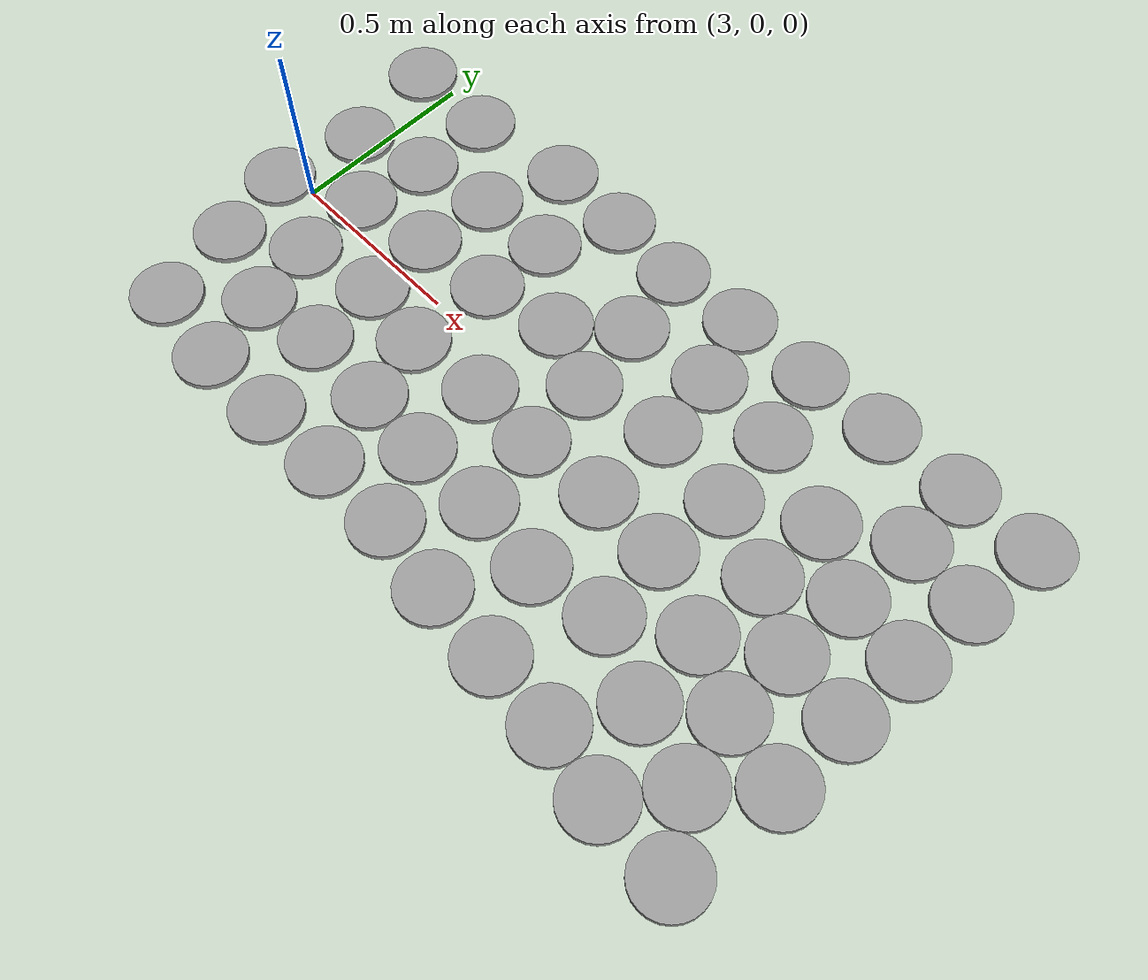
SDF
<sdf version="1.6">
 <world name="default">
  <model name="unit_cylinder_clone_clone_36">
   <pose>4.90435 -0.604437 0.008116 0 0 -0.001466</pose>
   <link name="link">
    <inertial>
     <mass>1</mass>
     <inertia><ixx>0.145833</ixx><ixy>0</ixy><ixz>0</ixz><iyy>0.145833</iyy><iyz>0</iyz><izz>0.125</izz></inertia>
    </inertial>
    <collision name="collision">
     <geometry><cylinder><radius>0.0950718</radius><length>0.0162339</length></cylinder></geometry>
    </collision>
    <visual name="visual">
     <geometry><cylinder><radius>0.0950718</radius><length>0.0162339</length></cylinder></geometry>
     <material>
      <script><name>Gazebo/Grey</name><uri>file://media/materials/scripts/gazebo.material</uri></script>
     </material>
    </visual>
   </link>
  </model>
  <model name="unit_cylinder_clone_clone_138">
   <pose>2.89325 0.483274 0.008108 0 -0 0</pose>
   <link name="link">
    <inertial>
     <mass>1</mass>
     <inertia><ixx>0.145833</ixx><ixy>0</ixy><ixz>0</ixz><iyy>0.145833</iyy><iyz>0</iyz><izz>0.125</izz></inertia>
    </inertial>
    <collision name="collision">
     <geometry><cylinder><radius>0.0950718</radius><length>0.0162339</length></cylinder></geometry>
    </collision>
    <visual name="visual">
     <geometry><cylinder><radius>0.0950718</radius><length>0.0162339</length></cylinder></geometry>
     <material>
      <script><name>Gazebo/Grey</name><uri>file://media/materials/scripts/gazebo.material</uri></script>
     </material>
    </visual>
   </link>
  </model>
  <model name="unit_cylinder_clone_clone_139">
   <pose>3.13849 0.47754 0.008111 0 -0 0</pose>
   <link name="link">
    <inertial>
     <mass>1</mass>
     <inertia><ixx>0.145833</ixx><ixy>0</ixy><ixz>0</ixz><iyy>0.145833</iyy><iyz>0</iyz><izz>0.125</izz></inertia>
    </inertial>
    <collision name="collision">
     <geometry><cylinder><radius>0.0950718</radius><length>0.0162339</length></cylinder></geometry>
    </collision>
    <visual name="visual">
     <geometry><cylinder><radius>0.0950718</radius><length>0.0162339</length></cylinder></geometry>
     <material>
      <script><name>Gazebo/Grey</name><uri>file://media/materials/scripts/gazebo.material</uri></script>
     </material>
    </visual>
   </link>
  </model>
  <model name="unit_cylinder_clone_clone_140">
   <pose>3.42416 0.515828 0.008111 0 -0 0</pose>
   <link name="link">
    <inertial>
     <mass>1</mass>
     <inertia><ixx>0.145833</ixx><ixy>0</ixy><ixz>0</ixz><iyy>0.145833</iyy><iyz>0</iyz><izz>0.125</izz></inertia>
    </inertial>
    <collision name="collision">
     <geometry><cylinder><radius>0.0950718</radius><length>0.0162339</length></cylinder></geometry>
    </collision>
    <visual name="visual">
     <geometry><cylinder><radius>0.0950718</radius><length>0.0162339</length></cylinder></geometry>
     <material>
      <script><name>Gazebo/Grey</name><uri>file://media/materials/scripts/gazebo.material</uri></script>
     </material>
    </visual>
   </link>
  </model>
  <model name="unit_cylinder_clone_clone_141">
   <pose>3.64434 0.508946 0.008111 0 -0 0</pose>
   <link name="link">
    <inertial>
     <mass>1</mass>
     <inertia><ixx>0.145833</ixx><ixy>0</ixy><ixz>0</ixz><iyy>0.145833</iyy><iyz>0</iyz><izz>0.125</izz></inertia>
    </inertial>
    <collision name="collision">
     <geometry><cylinder><radius>0.0950718</radius><length>0.0162339</length></cylinder></geometry>
    </collision>
    <visual name="visual">
     <geometry><cylinder><radius>0.0950718</radius><length>0.0162339</length></cylinder></geometry>
     <material>
      <script><name>Gazebo/Grey</name><uri>file://media/materials/scripts/gazebo.material</uri></script>
     </material>
    </visual>
   </link>
  </model>
  <model name="unit_cylinder_clone_clone_142">
   <pose>3.85659 0.493248 0.008111 0 -0 0</pose>
   <link name="link">
    <inertial>
     <mass>1</mass>
     <inertia><ixx>0.145833</ixx><ixy>0</ixy><ixz>0</ixz><iyy>0.145833</iyy><iyz>0</iyz><izz>0.125</izz></inertia>
    </inertial>
    <collision name="collision">
     <geometry><cylinder><radius>0.0950718</radius><length>0.0162339</length></cylinder></geometry>
    </collision>
    <visual name="visual">
     <geometry><cylinder><radius>0.0950718</radius><length>0.0162339</length></cylinder></geometry>
     <material>
      <script><name>Gazebo/Grey</name><uri>file://media/materials/scripts/gazebo.material</uri></script>
     </material>
    </visual>
   </link>
  </model>
  <model name="unit_cylinder_clone_clone_143">
   <pose>4.07459 0.507915 0.008117 0 0 -5e-06</pose>
   <link name="link">
    <inertial>
     <mass>1</mass>
     <inertia><ixx>0.145833</ixx><ixy>0</ixy><ixz>0</ixz><iyy>0.145833</iyy><iyz>0</iyz><izz>0.125</izz></inertia>
    </inertial>
    <collision name="collision">
     <geometry><cylinder><radius>0.0950718</radius><length>0.0162339</length></cylinder></geometry>
    </collision>
    <visual name="visual">
     <geometry><cylinder><radius>0.0950718</radius><length>0.0162339</length></cylinder></geometry>
     <material>
      <script><name>Gazebo/Grey</name><uri>file://media/materials/scripts/gazebo.material</uri></script>
     </material>
    </visual>
   </link>
  </model>
  <model name="unit_cylinder_clone_clone_144">
   <pose>4.30448 0.513574 0.008108 0 -0 0</pose>
   <link name="link">
    <inertial>
     <mass>1</mass>
     <inertia><ixx>0.145833</ixx><ixy>0</ixy><ixz>0</ixz><iyy>0.145833</iyy><iyz>0</iyz><izz>0.125</izz></inertia>
    </inertial>
    <collision name="collision">
     <geometry><cylinder><radius>0.0950718</radius><length>0.0162339</length></cylinder></geometry>
    </collision>
    <visual name="visual">
     <geometry><cylinder><radius>0.0950718</radius><length>0.0162339</length></cylinder></geometry>
     <material>
      <script><name>Gazebo/Grey</name><uri>file://media/materials/scripts/gazebo.material</uri></script>
     </material>
    </visual>
   </link>
  </model>
  <model name="unit_cylinder_clone_clone_145">
   <pose>4.52438 0.523553 0.008108 0 -0 0</pose>
   <link name="link">
    <inertial>
     <mass>1</mass>
     <inertia><ixx>0.145833</ixx><ixy>0</ixy><ixz>0</ixz><iyy>0.145833</iyy><iyz>0</iyz><izz>0.125</izz></inertia>
    </inertial>
    <collision name="collision">
     <geometry><cylinder><radius>0.0950718</radius><length>0.0162339</length></cylinder></geometry>
    </collision>
    <visual name="visual">
     <geometry><cylinder><radius>0.0950718</radius><length>0.0162339</length></cylinder></geometry>
     <material>
      <script><name>Gazebo/Grey</name><uri>file://media/materials/scripts/gazebo.material</uri></script>
     </material>
    </visual>
   </link>
  </model>
  <model name="unit_cylinder_clone_clone_146">
   <pose>4.76123 0.526268 0.008108 0 0 -0.000323</pose>
   <link name="link">
    <inertial>
     <mass>1</mass>
     <inertia><ixx>0.145833</ixx><ixy>0</ixy><ixz>0</ixz><iyy>0.145833</iyy><iyz>0</iyz><izz>0.125</izz></inertia>
    </inertial>
    <collision name="collision">
     <geometry><cylinder><radius>0.0950718</radius><length>0.0162339</length></cylinder></geometry>
    </collision>
    <visual name="visual">
     <geometry><cylinder><radius>0.0950718</radius><length>0.0162339</length></cylinder></geometry>
     <material>
      <script><name>Gazebo/Grey</name><uri>file://media/materials/scripts/gazebo.material</uri></script>
     </material>
    </visual>
   </link>
  </model>
  <model name="unit_cylinder_clone_clone_147">
   <pose>4.98221 0.527416 0.008108 0 -0 0</pose>
   <link name="link">
    <inertial>
     <mass>1</mass>
     <inertia><ixx>0.145833</ixx><ixy>0</ixy><ixz>0</ixz><iyy>0.145833</iyy><iyz>0</iyz><izz>0.125</izz></inertia>
    </inertial>
    <collision name="collision">
     <geometry><cylinder><radius>0.0950718</radius><length>0.0162339</length></cylinder></geometry>
    </collision>
    <visual name="visual">
     <geometry><cylinder><radius>0.0950718</radius><length>0.0162339</length></cylinder></geometry>
     <material>
      <script><name>Gazebo/Grey</name><uri>file://media/materials/scripts/gazebo.material</uri></script>
     </material>
    </visual>
   </link>
  </model>
  <model name="unit_cylinder_clone_clone_148">
   <pose>4.95923 0.314601 0.00811 0 -0 0.000135</pose>
   <link name="link">
    <inertial>
     <mass>1</mass>
     <inertia><ixx>0.145833</ixx><ixy>0</ixy><ixz>0</ixz><iyy>0.145833</iyy><iyz>0</iyz><izz>0.125</izz></inertia>
    </inertial>
    <collision name="collision">
     <geometry><cylinder><radius>0.0950718</radius><length>0.0162339</length></cylinder></geometry>
    </collision>
    <visual name="visual">
     <geometry><cylinder><radius>0.0950718</radius><length>0.0162339</length></cylinder></geometry>
     <material>
      <script><name>Gazebo/Grey</name><uri>file://media/materials/scripts/gazebo.material</uri></script>
     </material>
    </visual>
   </link>
  </model>
  <model name="unit_cylinder_clone_clone_149">
   <pose>4.94638 0.109705 0.008113 0 0 -1.2e-05</pose>
   <link name="link">
    <inertial>
     <mass>1</mass>
     <inertia><ixx>0.145833</ixx><ixy>0</ixy><ixz>0</ixz><iyy>0.145833</iyy><iyz>0</iyz><izz>0.125</izz></inertia>
    </inertial>
    <collision name="collision">
     <geometry><cylinder><radius>0.0950718</radius><length>0.0162339</length></cylinder></geometry>
    </collision>
    <visual name="visual">
     <geometry><cylinder><radius>0.0950718</radius><length>0.0162339</length></cylinder></geometry>
     <material>
      <script><name>Gazebo/Grey</name><uri>file://media/materials/scripts/gazebo.material</uri></script>
     </material>
    </visual>
   </link>
  </model>
  <model name="unit_cylinder_clone_clone_150">
   <pose>4.93795 -0.093221 0.008114 0 0 -0.000881</pose>
   <link name="link">
    <inertial>
     <mass>1</mass>
     <inertia><ixx>0.145833</ixx><ixy>0</ixy><ixz>0</ixz><iyy>0.145833</iyy><iyz>0</iyz><izz>0.125</izz></inertia>
    </inertial>
    <collision name="collision">
     <geometry><cylinder><radius>0.0950718</radius><length>0.0162339</length></cylinder></geometry>
    </collision>
    <visual name="visual">
     <geometry><cylinder><radius>0.0950718</radius><length>0.0162339</length></cylinder></geometry>
     <material>
      <script><name>Gazebo/Grey</name><uri>file://media/materials/scripts/gazebo.material</uri></script>
     </material>
    </visual>
   </link>
  </model>
  <model name="unit_cylinder_clone_clone_151">
   <pose>4.93708 -0.305269 0.008111 0 -0 0.000422</pose>
   <link name="link">
    <inertial>
     <mass>1</mass>
     <inertia><ixx>0.145833</ixx><ixy>0</ixy><ixz>0</ixz><iyy>0.145833</iyy><iyz>0</iyz><izz>0.125</izz></inertia>
    </inertial>
    <collision name="collision">
     <geometry><cylinder><radius>0.0950718</radius><length>0.0162339</length></cylinder></geometry>
    </collision>
    <visual name="visual">
     <geometry><cylinder><radius>0.0950718</radius><length>0.0162339</length></cylinder></geometry>
     <material>
      <script><name>Gazebo/Grey</name><uri>file://media/materials/scripts/gazebo.material</uri></script>
     </material>
    </visual>
   </link>
  </model>
  <model name="unit_cylinder_clone_clone_152">
   <pose>4.68583 -0.598279 0.008111 0 0 -0.001353</pose>
   <link name="link">
    <inertial>
     <mass>1</mass>
     <inertia><ixx>0.145833</ixx><ixy>0</ixy><ixz>0</ixz><iyy>0.145833</iyy><iyz>0</iyz><izz>0.125</izz></inertia>
    </inertial>
    <collision name="collision">
     <geometry><cylinder><radius>0.0950718</radius><length>0.0162339</length></cylinder></geometry>
    </collision>
    <visual name="visual">
     <geometry><cylinder><radius>0.0950718</radius><length>0.0162339</length></cylinder></geometry>
     <material>
      <script><name>Gazebo/Grey</name><uri>file://media/materials/scripts/gazebo.material</uri></script>
     </material>
    </visual>
   </link>
  </model>
  <model name="unit_cylinder_clone_clone_153">
   <pose>4.49802 -0.560228 0.008108 0 -0 0</pose>
   <link name="link">
    <inertial>
     <mass>1</mass>
     <inertia><ixx>0.145833</ixx><ixy>0</ixy><ixz>0</ixz><iyy>0.145833</iyy><iyz>0</iyz><izz>0.125</izz></inertia>
    </inertial>
    <collision name="collision">
     <geometry><cylinder><radius>0.0950718</radius><length>0.0162339</length></cylinder></geometry>
    </collision>
    <visual name="visual">
     <geometry><cylinder><radius>0.0950718</radius><length>0.0162339</length></cylinder></geometry>
     <material>
      <script><name>Gazebo/Grey</name><uri>file://media/materials/scripts/gazebo.material</uri></script>
     </material>
    </visual>
   </link>
  </model>
  <model name="unit_cylinder_clone_clone_154">
   <pose>4.29389 -0.543893 0.008111 0 -0 0</pose>
   <link name="link">
    <inertial>
     <mass>1</mass>
     <inertia><ixx>0.145833</ixx><ixy>0</ixy><ixz>0</ixz><iyy>0.145833</iyy><iyz>0</iyz><izz>0.125</izz></inertia>
    </inertial>
    <collision name="collision">
     <geometry><cylinder><radius>0.0950718</radius><length>0.0162339</length></cylinder></geometry>
    </collision>
    <visual name="visual">
     <geometry><cylinder><radius>0.0950718</radius><length>0.0162339</length></cylinder></geometry>
     <material>
      <script><name>Gazebo/Grey</name><uri>file://media/materials/scripts/gazebo.material</uri></script>
     </material>
    </visual>
   </link>
  </model>
  <model name="unit_cylinder_clone_clone_155">
   <pose>4.08148 -0.527942 0.008111 0 -0 0</pose>
   <link name="link">
    <inertial>
     <mass>1</mass>
     <inertia><ixx>0.145833</ixx><ixy>0</ixy><ixz>0</ixz><iyy>0.145833</iyy><iyz>0</iyz><izz>0.125</izz></inertia>
    </inertial>
    <collision name="collision">
     <geometry><cylinder><radius>0.0950718</radius><length>0.0162339</length></cylinder></geometry>
    </collision>
    <visual name="visual">
     <geometry><cylinder><radius>0.0950718</radius><length>0.0162339</length></cylinder></geometry>
     <material>
      <script><name>Gazebo/Grey</name><uri>file://media/materials/scripts/gazebo.material</uri></script>
     </material>
    </visual>
   </link>
  </model>
  <model name="unit_cylinder_clone_clone_156">
   <pose>3.8768 -0.494769 0.008108 0 -0 0</pose>
   <link name="link">
    <inertial>
     <mass>1</mass>
     <inertia><ixx>0.145833</ixx><ixy>0</ixy><ixz>0</ixz><iyy>0.145833</iyy><iyz>0</iyz><izz>0.125</izz></inertia>
    </inertial>
    <collision name="collision">
     <geometry><cylinder><radius>0.0950718</radius><length>0.0162339</length></cylinder></geometry>
    </collision>
    <visual name="visual">
     <geometry><cylinder><radius>0.0950718</radius><length>0.0162339</length></cylinder></geometry>
     <material>
      <script><name>Gazebo/Grey</name><uri>file://media/materials/scripts/gazebo.material</uri></script>
     </material>
    </visual>
   </link>
  </model>
  <model name="unit_cylinder_clone_clone_157">
   <pose>3.65687 -0.496051 0.008108 0 -0 0</pose>
   <link name="link">
    <inertial>
     <mass>1</mass>
     <inertia><ixx>0.145833</ixx><ixy>0</ixy><ixz>0</ixz><iyy>0.145833</iyy><iyz>0</iyz><izz>0.125</izz></inertia>
    </inertial>
    <collision name="collision">
     <geometry><cylinder><radius>0.0950718</radius><length>0.0162339</length></cylinder></geometry>
    </collision>
    <visual name="visual">
     <geometry><cylinder><radius>0.0950718</radius><length>0.0162339</length></cylinder></geometry>
     <material>
      <script><name>Gazebo/Grey</name><uri>file://media/materials/scripts/gazebo.material</uri></script>
     </material>
    </visual>
   </link>
  </model>
  <model name="unit_cylinder_clone_clone_158">
   <pose>3.4459 -0.505387 0.008111 0 -0 0</pose>
   <link name="link">
    <inertial>
     <mass>1</mass>
     <inertia><ixx>0.145833</ixx><ixy>0</ixy><ixz>0</ixz><iyy>0.145833</iyy><iyz>0</iyz><izz>0.125</izz></inertia>
    </inertial>
    <collision name="collision">
     <geometry><cylinder><radius>0.0950718</radius><length>0.0162339</length></cylinder></geometry>
    </collision>
    <visual name="visual">
     <geometry><cylinder><radius>0.0950718</radius><length>0.0162339</length></cylinder></geometry>
     <material>
      <script><name>Gazebo/Grey</name><uri>file://media/materials/scripts/gazebo.material</uri></script>
     </material>
    </visual>
   </link>
  </model>
  <model name="unit_cylinder_clone_clone_159">
   <pose>3.22615 -0.506667 0.008108 0 -0 0</pose>
   <link name="link">
    <inertial>
     <mass>1</mass>
     <inertia><ixx>0.145833</ixx><ixy>0</ixy><ixz>0</ixz><iyy>0.145833</iyy><iyz>0</iyz><izz>0.125</izz></inertia>
    </inertial>
    <collision name="collision">
     <geometry><cylinder><radius>0.0950718</radius><length>0.0162339</length></cylinder></geometry>
    </collision>
    <visual name="visual">
     <geometry><cylinder><radius>0.0950718</radius><length>0.0162339</length></cylinder></geometry>
     <material>
      <script><name>Gazebo/Grey</name><uri>file://media/materials/scripts/gazebo.material</uri></script>
     </material>
    </visual>
   </link>
  </model>
  <model name="unit_cylinder_clone_clone_160">
   <pose>3 -0.474655 0.008108 0 -0 0</pose>
   <link name="link">
    <inertial>
     <mass>1</mass>
     <inertia><ixx>0.145833</ixx><ixy>0</ixy><ixz>0</ixz><iyy>0.145833</iyy><iyz>0</iyz><izz>0.125</izz></inertia>
    </inertial>
    <collision name="collision">
     <geometry><cylinder><radius>0.0950718</radius><length>0.0162339</length></cylinder></geometry>
    </collision>
    <visual name="visual">
     <geometry><cylinder><radius>0.0950718</radius><length>0.0162339</length></cylinder></geometry>
     <material>
      <script><name>Gazebo/Grey</name><uri>file://media/materials/scripts/gazebo.material</uri></script>
     </material>
    </visual>
   </link>
  </model>
  <model name="unit_cylinder_clone_clone_205">
   <pose>2.95359 -0.239219 0.008116 0 -0 3e-06</pose>
   <link name="link">
    <inertial>
     <mass>1</mass>
     <inertia><ixx>0.145833</ixx><ixy>0</ixy><ixz>0</ixz><iyy>0.145833</iyy><iyz>0</iyz><izz>0.125</izz></inertia>
    </inertial>
    <collision name="collision">
     <geometry><cylinder><radius>0.0950718</radius><length>0.0162339</length></cylinder></geometry>
    </collision>
    <visual name="visual">
     <geometry><cylinder><radius>0.0950718</radius><length>0.0162339</length></cylinder></geometry>
     <material>
      <script><name>Gazebo/Grey</name><uri>file://media/materials/scripts/gazebo.material</uri></script>
     </material>
    </visual>
   </link>
  </model>
  <model name="unit_cylinder_clone_clone_206">
   <pose>2.90055 -0.030914 0.008108 0 -0 0</pose>
   <link name="link">
    <inertial>
     <mass>1</mass>
     <inertia><ixx>0.145833</ixx><ixy>0</ixy><ixz>0</ixz><iyy>0.145833</iyy><iyz>0</iyz><izz>0.125</izz></inertia>
    </inertial>
    <collision name="collision">
     <geometry><cylinder><radius>0.0950718</radius><length>0.0162339</length></cylinder></geometry>
    </collision>
    <visual name="visual">
     <geometry><cylinder><radius>0.0950718</radius><length>0.0162339</length></cylinder></geometry>
     <material>
      <script><name>Gazebo/Grey</name><uri>file://media/materials/scripts/gazebo.material</uri></script>
     </material>
    </visual>
   </link>
  </model>
  <model name="unit_cylinder_clone_clone_207">
   <pose>2.94007 0.215475 0.008116 0 -0 0</pose>
   <link name="link">
    <inertial>
     <mass>1</mass>
     <inertia><ixx>0.145833</ixx><ixy>0</ixy><ixz>0</ixz><iyy>0.145833</iyy><iyz>0</iyz><izz>0.125</izz></inertia>
    </inertial>
    <collision name="collision">
     <geometry><cylinder><radius>0.0950718</radius><length>0.0162339</length></cylinder></geometry>
    </collision>
    <visual name="visual">
     <geometry><cylinder><radius>0.0950718</radius><length>0.0162339</length></cylinder></geometry>
     <material>
      <script><name>Gazebo/Grey</name><uri>file://media/materials/scripts/gazebo.material</uri></script>
     </material>
    </visual>
   </link>
  </model>
  <model name="unit_cylinder_clone_clone_208">
   <pose>3.14051 0.266701 0.008108 0 -0 0</pose>
   <link name="link">
    <inertial>
     <mass>1</mass>
     <inertia><ixx>0.145833</ixx><ixy>0</ixy><ixz>0</ixz><iyy>0.145833</iyy><iyz>0</iyz><izz>0.125</izz></inertia>
    </inertial>
    <collision name="collision">
     <geometry><cylinder><radius>0.0950718</radius><length>0.0162339</length></cylinder></geometry>
    </collision>
    <visual name="visual">
     <geometry><cylinder><radius>0.0950718</radius><length>0.0162339</length></cylinder></geometry>
     <material>
      <script><name>Gazebo/Grey</name><uri>file://media/materials/scripts/gazebo.material</uri></script>
     </material>
    </visual>
   </link>
  </model>
  <model name="unit_cylinder_clone_clone_209">
   <pose>3.11553 0.071524 0.008108 0 -0 0</pose>
   <link name="link">
    <inertial>
     <mass>1</mass>
     <inertia><ixx>0.145833</ixx><ixy>0</ixy><ixz>0</ixz><iyy>0.145833</iyy><iyz>0</iyz><izz>0.125</izz></inertia>
    </inertial>
    <collision name="collision">
     <geometry><cylinder><radius>0.0950718</radius><length>0.0162339</length></cylinder></geometry>
    </collision>
    <visual name="visual">
     <geometry><cylinder><radius>0.0950718</radius><length>0.0162339</length></cylinder></geometry>
     <material>
      <script><name>Gazebo/Grey</name><uri>file://media/materials/scripts/gazebo.material</uri></script>
     </material>
    </visual>
   </link>
  </model>
  <model name="unit_cylinder_clone_clone_210">
   <pose>3.13292 -0.129381 0.008116 0 0 -2e-06</pose>
   <link name="link">
    <inertial>
     <mass>1</mass>
     <inertia><ixx>0.145833</ixx><ixy>0</ixy><ixz>0</ixz><iyy>0.145833</iyy><iyz>0</iyz><izz>0.125</izz></inertia>
    </inertial>
    <collision name="collision">
     <geometry><cylinder><radius>0.0950718</radius><length>0.0162339</length></cylinder></geometry>
    </collision>
    <visual name="visual">
     <geometry><cylinder><radius>0.0950718</radius><length>0.0162339</length></cylinder></geometry>
     <material>
      <script><name>Gazebo/Grey</name><uri>file://media/materials/scripts/gazebo.material</uri></script>
     </material>
    </visual>
   </link>
  </model>
  <model name="unit_cylinder_clone_clone_211">
   <pose>3.17541 -0.314717 0.008115 0 0 -1e-05</pose>
   <link name="link">
    <inertial>
     <mass>1</mass>
     <inertia><ixx>0.145833</ixx><ixy>0</ixy><ixz>0</ixz><iyy>0.145833</iyy><iyz>0</iyz><izz>0.125</izz></inertia>
    </inertial>
    <collision name="collision">
     <geometry><cylinder><radius>0.0950718</radius><length>0.0162339</length></cylinder></geometry>
    </collision>
    <visual name="visual">
     <geometry><cylinder><radius>0.0950718</radius><length>0.0162339</length></cylinder></geometry>
     <material>
      <script><name>Gazebo/Grey</name><uri>file://media/materials/scripts/gazebo.material</uri></script>
     </material>
    </visual>
   </link>
  </model>
  <model name="unit_cylinder_clone_clone_212">
   <pose>3.36841 -0.288432 0.008107 0 -0 0</pose>
   <link name="link">
    <inertial>
     <mass>1</mass>
     <inertia><ixx>0.145833</ixx><ixy>0</ixy><ixz>0</ixz><iyy>0.145833</iyy><iyz>0</iyz><izz>0.125</izz></inertia>
    </inertial>
    <collision name="collision">
     <geometry><cylinder><radius>0.0950718</radius><length>0.0162339</length></cylinder></geometry>
    </collision>
    <visual name="visual">
     <geometry><cylinder><radius>0.0950718</radius><length>0.0162339</length></cylinder></geometry>
     <material>
      <script><name>Gazebo/Grey</name><uri>file://media/materials/scripts/gazebo.material</uri></script>
     </material>
    </visual>
   </link>
  </model>
  <model name="unit_cylinder_clone_clone_213">
   <pose>3.35092 -0.08765 0.008108 0 -0 0</pose>
   <link name="link">
    <inertial>
     <mass>1</mass>
     <inertia><ixx>0.145833</ixx><ixy>0</ixy><ixz>0</ixz><iyy>0.145833</iyy><iyz>0</iyz><izz>0.125</izz></inertia>
    </inertial>
    <collision name="collision">
     <geometry><cylinder><radius>0.0950718</radius><length>0.0162339</length></cylinder></geometry>
    </collision>
    <visual name="visual">
     <geometry><cylinder><radius>0.0950718</radius><length>0.0162339</length></cylinder></geometry>
     <material>
      <script><name>Gazebo/Grey</name><uri>file://media/materials/scripts/gazebo.material</uri></script>
     </material>
    </visual>
   </link>
  </model>
  <model name="unit_cylinder_clone_clone_214">
   <pose>3.33373 0.105676 0.008107 0 -0 0</pose>
   <link name="link">
    <inertial>
     <mass>1</mass>
     <inertia><ixx>0.145833</ixx><ixy>0</ixy><ixz>0</ixz><iyy>0.145833</iyy><iyz>0</iyz><izz>0.125</izz></inertia>
    </inertial>
    <collision name="collision">
     <geometry><cylinder><radius>0.0950718</radius><length>0.0162339</length></cylinder></geometry>
    </collision>
    <visual name="visual">
     <geometry><cylinder><radius>0.0950718</radius><length>0.0162339</length></cylinder></geometry>
     <material>
      <script><name>Gazebo/Grey</name><uri>file://media/materials/scripts/gazebo.material</uri></script>
     </material>
    </visual>
   </link>
  </model>
  <model name="unit_cylinder_clone_clone_215">
   <pose>3.34991 0.308941 0.008111 0 -0 0</pose>
   <link name="link">
    <inertial>
     <mass>1</mass>
     <inertia><ixx>0.145833</ixx><ixy>0</ixy><ixz>0</ixz><iyy>0.145833</iyy><iyz>0</iyz><izz>0.125</izz></inertia>
    </inertial>
    <collision name="collision">
     <geometry><cylinder><radius>0.0950718</radius><length>0.0162339</length></cylinder></geometry>
    </collision>
    <visual name="visual">
     <geometry><cylinder><radius>0.0950718</radius><length>0.0162339</length></cylinder></geometry>
     <material>
      <script><name>Gazebo/Grey</name><uri>file://media/materials/scripts/gazebo.material</uri></script>
     </material>
    </visual>
   </link>
  </model>
  <model name="unit_cylinder_clone_clone_216">
   <pose>3.56087 0.318476 0.008111 0 -0 0</pose>
   <link name="link">
    <inertial>
     <mass>1</mass>
     <inertia><ixx>0.145833</ixx><ixy>0</ixy><ixz>0</ixz><iyy>0.145833</iyy><iyz>0</iyz><izz>0.125</izz></inertia>
    </inertial>
    <collision name="collision">
     <geometry><cylinder><radius>0.0950718</radius><length>0.0162339</length></cylinder></geometry>
    </collision>
    <visual name="visual">
     <geometry><cylinder><radius>0.0950718</radius><length>0.0162339</length></cylinder></geometry>
     <material>
      <script><name>Gazebo/Grey</name><uri>file://media/materials/scripts/gazebo.material</uri></script>
     </material>
    </visual>
   </link>
  </model>
  <model name="unit_cylinder_clone_clone_217">
   <pose>3.55278 0.12396 0.008111 0 -0 0</pose>
   <link name="link">
    <inertial>
     <mass>1</mass>
     <inertia><ixx>0.145833</ixx><ixy>0</ixy><ixz>0</ixz><iyy>0.145833</iyy><iyz>0</iyz><izz>0.125</izz></inertia>
    </inertial>
    <collision name="collision">
     <geometry><cylinder><radius>0.0950718</radius><length>0.0162339</length></cylinder></geometry>
    </collision>
    <visual name="visual">
     <geometry><cylinder><radius>0.0950718</radius><length>0.0162339</length></cylinder></geometry>
     <material>
      <script><name>Gazebo/Grey</name><uri>file://media/materials/scripts/gazebo.material</uri></script>
     </material>
    </visual>
   </link>
  </model>
  <model name="unit_cylinder_clone_clone_218">
   <pose>3.54395 -0.116753 0.008108 0 0 -2.4e-05</pose>
   <link name="link">
    <inertial>
     <mass>1</mass>
     <inertia><ixx>0.145833</ixx><ixy>0</ixy><ixz>0</ixz><iyy>0.145833</iyy><iyz>0</iyz><izz>0.125</izz></inertia>
    </inertial>
    <collision name="collision">
     <geometry><cylinder><radius>0.0950718</radius><length>0.0162339</length></cylinder></geometry>
    </collision>
    <visual name="visual">
     <geometry><cylinder><radius>0.0950718</radius><length>0.0162339</length></cylinder></geometry>
     <material>
      <script><name>Gazebo/Grey</name><uri>file://media/materials/scripts/gazebo.material</uri></script>
     </material>
    </visual>
   </link>
  </model>
  <model name="unit_cylinder_clone_clone_219">
   <pose>3.59163 -0.300822 0.008107 0 0 -2.5e-05</pose>
   <link name="link">
    <inertial>
     <mass>1</mass>
     <inertia><ixx>0.145833</ixx><ixy>0</ixy><ixz>0</ixz><iyy>0.145833</iyy><iyz>0</iyz><izz>0.125</izz></inertia>
    </inertial>
    <collision name="collision">
     <geometry><cylinder><radius>0.0950718</radius><length>0.0162339</length></cylinder></geometry>
    </collision>
    <visual name="visual">
     <geometry><cylinder><radius>0.0950718</radius><length>0.0162339</length></cylinder></geometry>
     <material>
      <script><name>Gazebo/Grey</name><uri>file://media/materials/scripts/gazebo.material</uri></script>
     </material>
    </visual>
   </link>
  </model>
  <model name="unit_cylinder_clone_clone_220">
   <pose>3.78397 -0.313128 0.008111 0 -0 0</pose>
   <link name="link">
    <inertial>
     <mass>1</mass>
     <inertia><ixx>0.145833</ixx><ixy>0</ixy><ixz>0</ixz><iyy>0.145833</iyy><iyz>0</iyz><izz>0.125</izz></inertia>
    </inertial>
    <collision name="collision">
     <geometry><cylinder><radius>0.0950718</radius><length>0.0162339</length></cylinder></geometry>
    </collision>
    <visual name="visual">
     <geometry><cylinder><radius>0.0950718</radius><length>0.0162339</length></cylinder></geometry>
     <material>
      <script><name>Gazebo/Grey</name><uri>file://media/materials/scripts/gazebo.material</uri></script>
     </material>
    </visual>
   </link>
  </model>
  <model name="unit_cylinder_clone_clone_221">
   <pose>3.76566 -0.09443 0.008111 0 -0 0</pose>
   <link name="link">
    <inertial>
     <mass>1</mass>
     <inertia><ixx>0.145833</ixx><ixy>0</ixy><ixz>0</ixz><iyy>0.145833</iyy><iyz>0</iyz><izz>0.125</izz></inertia>
    </inertial>
    <collision name="collision">
     <geometry><cylinder><radius>0.0950718</radius><length>0.0162339</length></cylinder></geometry>
    </collision>
    <visual name="visual">
     <geometry><cylinder><radius>0.0950718</radius><length>0.0162339</length></cylinder></geometry>
     <material>
      <script><name>Gazebo/Grey</name><uri>file://media/materials/scripts/gazebo.material</uri></script>
     </material>
    </visual>
   </link>
  </model>
  <model name="unit_cylinder_clone_clone_222">
   <pose>3.76052 0.167575 0.008111 0 0 -1e-06</pose>
   <link name="link">
    <inertial>
     <mass>1</mass>
     <inertia><ixx>0.145833</ixx><ixy>0</ixy><ixz>0</ixz><iyy>0.145833</iyy><iyz>0</iyz><izz>0.125</izz></inertia>
    </inertial>
    <collision name="collision">
     <geometry><cylinder><radius>0.0950718</radius><length>0.0162339</length></cylinder></geometry>
    </collision>
    <visual name="visual">
     <geometry><cylinder><radius>0.0950718</radius><length>0.0162339</length></cylinder></geometry>
     <material>
      <script><name>Gazebo/Grey</name><uri>file://media/materials/scripts/gazebo.material</uri></script>
     </material>
    </visual>
   </link>
  </model>
  <model name="unit_cylinder_clone_clone_223">
   <pose>3.9005 0.297308 0.008117 0 -0 1e-06</pose>
   <link name="link">
    <inertial>
     <mass>1</mass>
     <inertia><ixx>0.145833</ixx><ixy>0</ixy><ixz>0</ixz><iyy>0.145833</iyy><iyz>0</iyz><izz>0.125</izz></inertia>
    </inertial>
    <collision name="collision">
     <geometry><cylinder><radius>0.0950718</radius><length>0.0162339</length></cylinder></geometry>
    </collision>
    <visual name="visual">
     <geometry><cylinder><radius>0.0950718</radius><length>0.0162339</length></cylinder></geometry>
     <material>
      <script><name>Gazebo/Grey</name><uri>file://media/materials/scripts/gazebo.material</uri></script>
     </material>
    </visual>
   </link>
  </model>
  <model name="unit_cylinder_clone_clone_224">
   <pose>3.93641 0.095318 0.008109 0 -0 1.1e-05</pose>
   <link name="link">
    <inertial>
     <mass>1</mass>
     <inertia><ixx>0.145833</ixx><ixy>0</ixy><ixz>0</ixz><iyy>0.145833</iyy><iyz>0</iyz><izz>0.125</izz></inertia>
    </inertial>
    <collision name="collision">
     <geometry><cylinder><radius>0.0950718</radius><length>0.0162339</length></cylinder></geometry>
    </collision>
    <visual name="visual">
     <geometry><cylinder><radius>0.0950718</radius><length>0.0162339</length></cylinder></geometry>
     <material>
      <script><name>Gazebo/Grey</name><uri>file://media/materials/scripts/gazebo.material</uri></script>
     </material>
    </visual>
   </link>
  </model>
  <model name="unit_cylinder_clone_clone_225">
   <pose>3.9608 -0.105522 0.008111 0 -0 0</pose>
   <link name="link">
    <inertial>
     <mass>1</mass>
     <inertia><ixx>0.145833</ixx><ixy>0</ixy><ixz>0</ixz><iyy>0.145833</iyy><iyz>0</iyz><izz>0.125</izz></inertia>
    </inertial>
    <collision name="collision">
     <geometry><cylinder><radius>0.0950718</radius><length>0.0162339</length></cylinder></geometry>
    </collision>
    <visual name="visual">
     <geometry><cylinder><radius>0.0950718</radius><length>0.0162339</length></cylinder></geometry>
     <material>
      <script><name>Gazebo/Grey</name><uri>file://media/materials/scripts/gazebo.material</uri></script>
     </material>
    </visual>
   </link>
  </model>
  <model name="unit_cylinder_clone_clone_226">
   <pose>3.99526 -0.306657 0.008111 0 -0 0</pose>
   <link name="link">
    <inertial>
     <mass>1</mass>
     <inertia><ixx>0.145833</ixx><ixy>0</ixy><ixz>0</ixz><iyy>0.145833</iyy><iyz>0</iyz><izz>0.125</izz></inertia>
    </inertial>
    <collision name="collision">
     <geometry><cylinder><radius>0.0950718</radius><length>0.0162339</length></cylinder></geometry>
    </collision>
    <visual name="visual">
     <geometry><cylinder><radius>0.0950718</radius><length>0.0162339</length></cylinder></geometry>
     <material>
      <script><name>Gazebo/Grey</name><uri>file://media/materials/scripts/gazebo.material</uri></script>
     </material>
    </visual>
   </link>
  </model>
  <model name="unit_cylinder_clone_clone_227">
   <pose>4.19963 -0.331371 0.008111 0 -0 0</pose>
   <link name="link">
    <inertial>
     <mass>1</mass>
     <inertia><ixx>0.145833</ixx><ixy>0</ixy><ixz>0</ixz><iyy>0.145833</iyy><iyz>0</iyz><izz>0.125</izz></inertia>
    </inertial>
    <collision name="collision">
     <geometry><cylinder><radius>0.0950718</radius><length>0.0162339</length></cylinder></geometry>
    </collision>
    <visual name="visual">
     <geometry><cylinder><radius>0.0950718</radius><length>0.0162339</length></cylinder></geometry>
     <material>
      <script><name>Gazebo/Grey</name><uri>file://media/materials/scripts/gazebo.material</uri></script>
     </material>
    </visual>
   </link>
  </model>
  <model name="unit_cylinder_clone_clone_228">
   <pose>4.1717 -0.087659 0.008111 0 -0 0</pose>
   <link name="link">
    <inertial>
     <mass>1</mass>
     <inertia><ixx>0.145833</ixx><ixy>0</ixy><ixz>0</ixz><iyy>0.145833</iyy><iyz>0</iyz><izz>0.125</izz></inertia>
    </inertial>
    <collision name="collision">
     <geometry><cylinder><radius>0.0950718</radius><length>0.0162339</length></cylinder></geometry>
    </collision>
    <visual name="visual">
     <geometry><cylinder><radius>0.0950718</radius><length>0.0162339</length></cylinder></geometry>
     <material>
      <script><name>Gazebo/Grey</name><uri>file://media/materials/scripts/gazebo.material</uri></script>
     </material>
    </visual>
   </link>
  </model>
  <model name="unit_cylinder_clone_clone_229">
   <pose>4.16143 0.139814 0.008116 0 0 -6e-06</pose>
   <link name="link">
    <inertial>
     <mass>1</mass>
     <inertia><ixx>0.145833</ixx><ixy>0</ixy><ixz>0</ixz><iyy>0.145833</iyy><iyz>0</iyz><izz>0.125</izz></inertia>
    </inertial>
    <collision name="collision">
     <geometry><cylinder><radius>0.0950718</radius><length>0.0162339</length></cylinder></geometry>
    </collision>
    <visual name="visual">
     <geometry><cylinder><radius>0.0950718</radius><length>0.0162339</length></cylinder></geometry>
     <material>
      <script><name>Gazebo/Grey</name><uri>file://media/materials/scripts/gazebo.material</uri></script>
     </material>
    </visual>
   </link>
  </model>
  <model name="unit_cylinder_clone_clone_230">
   <pose>4.1374 0.328443 0.008117 0 0 -9e-06</pose>
   <link name="link">
    <inertial>
     <mass>1</mass>
     <inertia><ixx>0.145833</ixx><ixy>0</ixy><ixz>0</ixz><iyy>0.145833</iyy><iyz>0</iyz><izz>0.125</izz></inertia>
    </inertial>
    <collision name="collision">
     <geometry><cylinder><radius>0.0950718</radius><length>0.0162339</length></cylinder></geometry>
    </collision>
    <visual name="visual">
     <geometry><cylinder><radius>0.0950718</radius><length>0.0162339</length></cylinder></geometry>
     <material>
      <script><name>Gazebo/Grey</name><uri>file://media/materials/scripts/gazebo.material</uri></script>
     </material>
    </visual>
   </link>
  </model>
  <model name="unit_cylinder_clone_clone_231">
   <pose>4.35671 0.317699 0.008111 0 -0 0</pose>
   <link name="link">
    <inertial>
     <mass>1</mass>
     <inertia><ixx>0.145833</ixx><ixy>0</ixy><ixz>0</ixz><iyy>0.145833</iyy><iyz>0</iyz><izz>0.125</izz></inertia>
    </inertial>
    <collision name="collision">
     <geometry><cylinder><radius>0.0950718</radius><length>0.0162339</length></cylinder></geometry>
    </collision>
    <visual name="visual">
     <geometry><cylinder><radius>0.0950718</radius><length>0.0162339</length></cylinder></geometry>
     <material>
      <script><name>Gazebo/Grey</name><uri>file://media/materials/scripts/gazebo.material</uri></script>
     </material>
    </visual>
   </link>
  </model>
  <model name="unit_cylinder_clone_clone_232">
   <pose>4.39161 0.108042 0.008107 0 -0 0</pose>
   <link name="link">
    <inertial>
     <mass>1</mass>
     <inertia><ixx>0.145833</ixx><ixy>0</ixy><ixz>0</ixz><iyy>0.145833</iyy><iyz>0</iyz><izz>0.125</izz></inertia>
    </inertial>
    <collision name="collision">
     <geometry><cylinder><radius>0.0950718</radius><length>0.0162339</length></cylinder></geometry>
    </collision>
    <visual name="visual">
     <geometry><cylinder><radius>0.0950718</radius><length>0.0162339</length></cylinder></geometry>
     <material>
      <script><name>Gazebo/Grey</name><uri>file://media/materials/scripts/gazebo.material</uri></script>
     </material>
    </visual>
   </link>
  </model>
  <model name="unit_cylinder_clone_clone_233">
   <pose>4.37537 -0.095462 0.008111 0 -0 0</pose>
   <link name="link">
    <inertial>
     <mass>1</mass>
     <inertia><ixx>0.145833</ixx><ixy>0</ixy><ixz>0</ixz><iyy>0.145833</iyy><iyz>0</iyz><izz>0.125</izz></inertia>
    </inertial>
    <collision name="collision">
     <geometry><cylinder><radius>0.0950718</radius><length>0.0162339</length></cylinder></geometry>
    </collision>
    <visual name="visual">
     <geometry><cylinder><radius>0.0950718</radius><length>0.0162339</length></cylinder></geometry>
     <material>
      <script><name>Gazebo/Grey</name><uri>file://media/materials/scripts/gazebo.material</uri></script>
     </material>
    </visual>
   </link>
  </model>
  <model name="unit_cylinder_clone_clone_234">
   <pose>4.40143 -0.297077 0.008108 0 -0 0</pose>
   <link name="link">
    <inertial>
     <mass>1</mass>
     <inertia><ixx>0.145833</ixx><ixy>0</ixy><ixz>0</ixz><iyy>0.145833</iyy><iyz>0</iyz><izz>0.125</izz></inertia>
    </inertial>
    <collision name="collision">
     <geometry><cylinder><radius>0.0950718</radius><length>0.0162339</length></cylinder></geometry>
    </collision>
    <visual name="visual">
     <geometry><cylinder><radius>0.0950718</radius><length>0.0162339</length></cylinder></geometry>
     <material>
      <script><name>Gazebo/Grey</name><uri>file://media/materials/scripts/gazebo.material</uri></script>
     </material>
    </visual>
   </link>
  </model>
  <model name="unit_cylinder_clone_clone_235">
   <pose>4.59977 -0.384538 0.008109 0 0 -0.001732</pose>
   <link name="link">
    <inertial>
     <mass>1</mass>
     <inertia><ixx>0.145833</ixx><ixy>0</ixy><ixz>0</ixz><iyy>0.145833</iyy><iyz>0</iyz><izz>0.125</izz></inertia>
    </inertial>
    <collision name="collision">
     <geometry><cylinder><radius>0.0950718</radius><length>0.0162339</length></cylinder></geometry>
    </collision>
    <visual name="visual">
     <geometry><cylinder><radius>0.0950718</radius><length>0.0162339</length></cylinder></geometry>
     <material>
      <script><name>Gazebo/Grey</name><uri>file://media/materials/scripts/gazebo.material</uri></script>
     </material>
    </visual>
   </link>
  </model>
  <model name="unit_cylinder_clone_clone_236">
   <pose>4.57984 -0.180494 0.00811 0 -0 0.004546</pose>
   <link name="link">
    <inertial>
     <mass>1</mass>
     <inertia><ixx>0.145833</ixx><ixy>0</ixy><ixz>0</ixz><iyy>0.145833</iyy><iyz>0</iyz><izz>0.125</izz></inertia>
    </inertial>
    <collision name="collision">
     <geometry><cylinder><radius>0.0950718</radius><length>0.0162339</length></cylinder></geometry>
    </collision>
    <visual name="visual">
     <geometry><cylinder><radius>0.0950718</radius><length>0.0162339</length></cylinder></geometry>
     <material>
      <script><name>Gazebo/Grey</name><uri>file://media/materials/scripts/gazebo.material</uri></script>
     </material>
    </visual>
   </link>
  </model>
  <model name="unit_cylinder_clone_clone_237">
   <pose>4.58644 0.027195 0.008117 0 -0 0.00052</pose>
   <link name="link">
    <inertial>
     <mass>1</mass>
     <inertia><ixx>0.145833</ixx><ixy>0</ixy><ixz>0</ixz><iyy>0.145833</iyy><iyz>0</iyz><izz>0.125</izz></inertia>
    </inertial>
    <collision name="collision">
     <geometry><cylinder><radius>0.0950718</radius><length>0.0162339</length></cylinder></geometry>
    </collision>
    <visual name="visual">
     <geometry><cylinder><radius>0.0950718</radius><length>0.0162339</length></cylinder></geometry>
     <material>
      <script><name>Gazebo/Grey</name><uri>file://media/materials/scripts/gazebo.material</uri></script>
     </material>
    </visual>
   </link>
  </model>
  <model name="unit_cylinder_clone_clone_238">
   <pose>4.58964 0.226791 0.008107 0 -0 0</pose>
   <link name="link">
    <inertial>
     <mass>1</mass>
     <inertia><ixx>0.145833</ixx><ixy>0</ixy><ixz>0</ixz><iyy>0.145833</iyy><iyz>0</iyz><izz>0.125</izz></inertia>
    </inertial>
    <collision name="collision">
     <geometry><cylinder><radius>0.0950718</radius><length>0.0162339</length></cylinder></geometry>
    </collision>
    <visual name="visual">
     <geometry><cylinder><radius>0.0950718</radius><length>0.0162339</length></cylinder></geometry>
     <material>
      <script><name>Gazebo/Grey</name><uri>file://media/materials/scripts/gazebo.material</uri></script>
     </material>
    </visual>
   </link>
  </model>
  <model name="unit_cylinder_clone_clone_239">
   <pose>4.77033 0.33634 0.008107 0 0 -0.000188</pose>
   <link name="link">
    <inertial>
     <mass>1</mass>
     <inertia><ixx>0.145833</ixx><ixy>0</ixy><ixz>0</ixz><iyy>0.145833</iyy><iyz>0</iyz><izz>0.125</izz></inertia>
    </inertial>
    <collision name="collision">
     <geometry><cylinder><radius>0.0950718</radius><length>0.0162339</length></cylinder></geometry>
    </collision>
    <visual name="visual">
     <geometry><cylinder><radius>0.0950718</radius><length>0.0162339</length></cylinder></geometry>
     <material>
      <script><name>Gazebo/Grey</name><uri>file://media/materials/scripts/gazebo.material</uri></script>
     </material>
    </visual>
   </link>
  </model>
  <model name="unit_cylinder_clone_clone_240">
   <pose>4.75703 0.127191 0.008111 0 0 -2.5e-05</pose>
   <link name="link">
    <inertial>
     <mass>1</mass>
     <inertia><ixx>0.145833</ixx><ixy>0</ixy><ixz>0</ixz><iyy>0.145833</iyy><iyz>0</iyz><izz>0.125</izz></inertia>
    </inertial>
    <collision name="collision">
     <geometry><cylinder><radius>0.0950718</radius><length>0.0162339</length></cylinder></geometry>
    </collision>
    <visual name="visual">
     <geometry><cylinder><radius>0.0950718</radius><length>0.0162339</length></cylinder></geometry>
     <material>
      <script><name>Gazebo/Grey</name><uri>file://media/materials/scripts/gazebo.material</uri></script>
     </material>
    </visual>
   </link>
  </model>
  <model name="unit_cylinder_clone_clone_241">
   <pose>4.74892 -0.071591 0.008111 0 -0 0.002882</pose>
   <link name="link">
    <inertial>
     <mass>1</mass>
     <inertia><ixx>0.145833</ixx><ixy>0</ixy><ixz>0</ixz><iyy>0.145833</iyy><iyz>0</iyz><izz>0.125</izz></inertia>
    </inertial>
    <collision name="collision">
     <geometry><cylinder><radius>0.0950718</radius><length>0.0162339</length></cylinder></geometry>
    </collision>
    <visual name="visual">
     <geometry><cylinder><radius>0.0950718</radius><length>0.0162339</length></cylinder></geometry>
     <material>
      <script><name>Gazebo/Grey</name><uri>file://media/materials/scripts/gazebo.material</uri></script>
     </material>
    </visual>
   </link>
  </model>
  <model name="unit_cylinder_clone_clone_242">
   <pose>4.75181 -0.261721 0.008107 0 -0 0.001102</pose>
   <link name="link">
    <inertial>
     <mass>1</mass>
     <inertia><ixx>0.145833</ixx><ixy>0</ixy><ixz>0</ixz><iyy>0.145833</iyy><iyz>0</iyz><izz>0.125</izz></inertia>
    </inertial>
    <collision name="collision">
     <geometry><cylinder><radius>0.0950718</radius><length>0.0162339</length></cylinder></geometry>
    </collision>
    <visual name="visual">
     <geometry><cylinder><radius>0.0950718</radius><length>0.0162339</length></cylinder></geometry>
     <material>
      <script><name>Gazebo/Grey</name><uri>file://media/materials/scripts/gazebo.material</uri></script>
     </material>
    </visual>
   </link>
  </model>
  <model name="unit_cylinder_clone_clone_243">
   <pose>4.79955 -0.445774 0.008117 0 0 -0.000248</pose>
   <link name="link">
    <inertial>
     <mass>1</mass>
     <inertia><ixx>0.145833</ixx><ixy>0</ixy><ixz>0</ixz><iyy>0.145833</iyy><iyz>0</iyz><izz>0.125</izz></inertia>
    </inertial>
    <collision name="collision">
     <geometry><cylinder><radius>0.0950718</radius><length>0.0162339</length></cylinder></geometry>
    </collision>
    <visual name="visual">
     <geometry><cylinder><radius>0.0950718</radius><length>0.0162339</length></cylinder></geometry>
     <material>
      <script><name>Gazebo/Grey</name><uri>file://media/materials/scripts/gazebo.material</uri></script>
     </material>
    </visual>
   </link>
  </model>
 </world>
</sdf>
